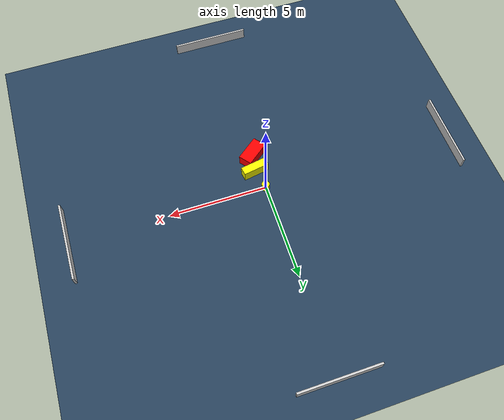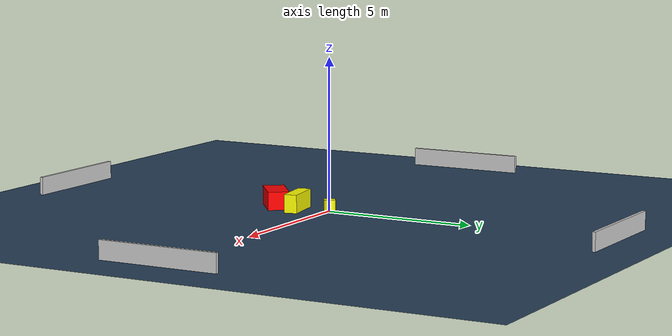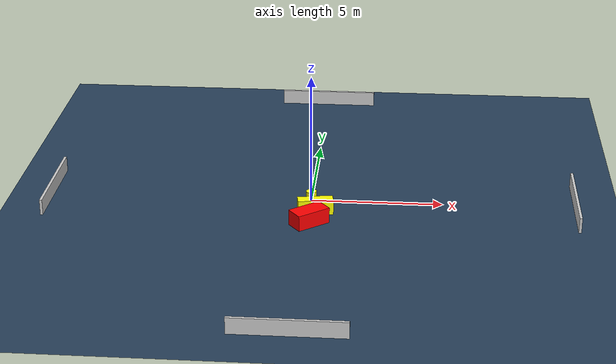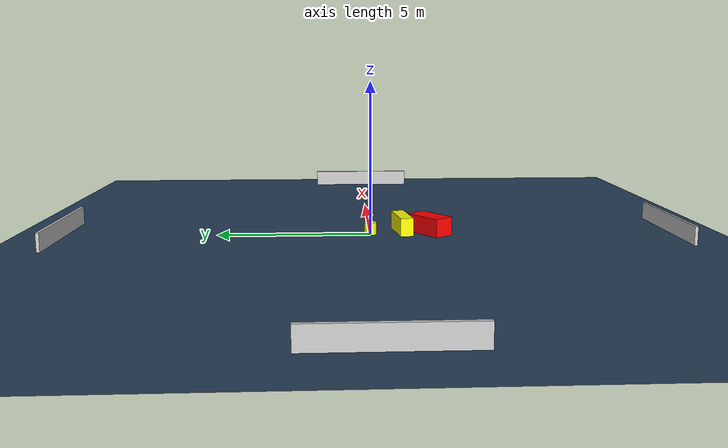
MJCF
<?xml version="1.0" ?>
<mujoco model="generated_environment">
  <option timestep="0.01" integrator="RK4" cone="elliptic"/>
  <default>
    <geom density="1"/>
  </default>
  <asset>
    <texture builtin="gradient" height="3072" name="skybox" rgb1="0.3 0.5 0.7" rgb2="0 0 0" type="skybox" width="512"/>
    <texture builtin="checker" height="300" name="groundplane" rgb1="0.2 0.3 0.4" rgb2="0.1 0.2 0.3" type="2d" width="300"/>
    <material name="groundplane" reflectance="0.2" texrepeat="5 5" texture="groundplane"/>
  </asset>
  <worldbody>
    <light dir="0 0 -1" directional="true" pos="0 0 1.5"/>
    <geom condim="3" friction="0.5 0.005 0.001" material="groundplane" name="floor" pos="0 0 0" size="0 0 0.05" type="plane"/>
    <body name="walls">
      <geom name="wall_1" condim="4" pos="-10.0 0.0 0.3" rgba="0.800000011920929 0.800000011920929 0.800000011920929 1.0" size="0.05 2.0 0.3" type="box"/>
      <geom name="wall_2" condim="4" pos="10.0 0.0 0.3" rgba="0.800000011920929 0.800000011920929 0.800000011920929 1.0" size="0.05 2.0 0.3" type="box"/>
      <geom name="wall_3" condim="4" pos="0.0 -10.0 0.3" rgba="0.800000011920929 0.800000011920929 0.800000011920929 1.0" size="2.0 0.05 0.3" type="box"/>
      <geom name="wall_4" condim="4" pos="0.0 10.0 0.3" rgba="0.800000011920929 0.800000011920929 0.800000011920929 1.0" size="2.0 0.05 0.3" type="box"/>
    </body>
    <body name="robot">
      <joint name="joint_x" type="slide" pos="0 0 0" axis="1 0 0"/>
      <joint name="joint_y" type="slide" pos="0 0 0" axis="0 1 0"/>
      <geom name="robot" type="cylinder" pos="0.0 0.0 0.2" size="0.2 0.2 0.0" mass="5.0" friction="1.0 0.005 0.0001" condim="4" rgba="1.0 1.0 0.0 1.0"/>
    </body>
    <body name="obstacle_1_movable">
      <geom name="obstacle_1_movable" condim="4" pos="0.2249425419234494 -1.0671036593651884 0.3" euler="0 0 9.493463815826226" friction="0.0 0.005 0.001" rgba="1.0 1.0 0.0 1.0" size="0.664314435735651 0.212343382619432 0.3" type="box" mass="0.1"/>
      <joint type="free"/>
    </body>
    <body name="obstacle_2_static">
      <geom name="obstacle_2_static" condim="4" pos="0.06139480159946234 -1.9690085928303132 0.3" euler="0 0 128.07216472447212" friction="0.0 0.005 0.001" rgba="1.0 0.0 0.0 1.0" size="0.3500300836032221 0.6730534208277776 0.3" type="box"/>
    </body>
  </worldbody>
  <actuator>
    <motor name="actuator_x" joint="joint_x" gear="1" ctrlrange="-1 1"/>
    <motor name="actuator_y" joint="joint_y" gear="1" ctrlrange="-1 1"/>
  </actuator>
</mujoco>
